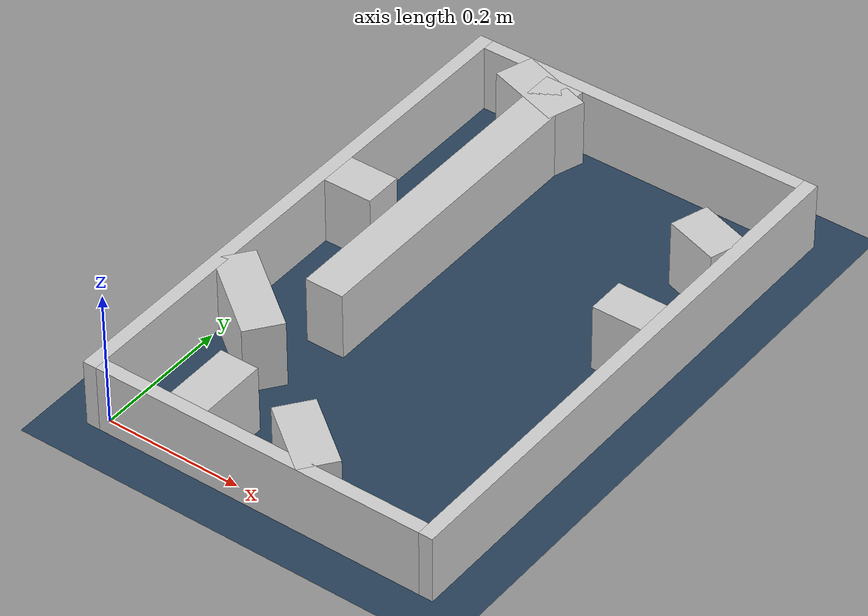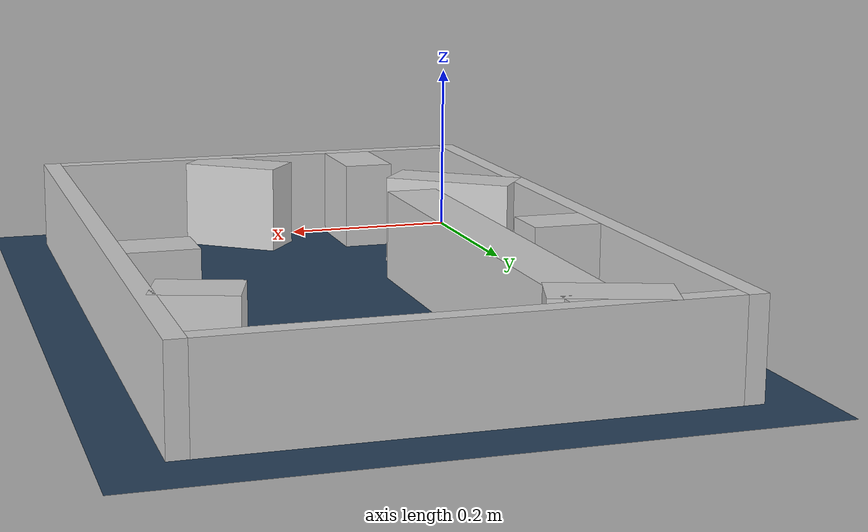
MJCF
<?xml version="1.0" ?>
<mujoco model="generated_real_template">
  <compiler angle="degree"/>
  <option timestep="0.002" integrator="implicitfast" iterations="100" cone="elliptic"/>
  <default>
    <geom density="1"/>
  </default>
  <asset>
    <texture builtin="gradient" height="3072" rgb1="0.3 0.5 0.7" rgb2="0 0 0" type="skybox" width="512"/>
    <texture builtin="checker" height="300" mark="edge" markrgb="0.8 0.8 0.8" name="groundplane" rgb1="0.2 0.3 0.4" rgb2="0.1 0.2 0.3" type="2d" width="300"/>
    <material name="groundplane" reflectance="0.2" texrepeat="5 5" texture="groundplane" texuniform="true"/>
  </asset>
  <worldbody>
    <light dir="0 0 -1" directional="true" pos="0 0 1.5"/>
    <geom name="floor" type="plane" condim="4" friction="0.5 0.005 0.001" material="groundplane" size="0 0 0.05"/>
    <body name="walls">
      <geom name="wall_boundary_left" type="box" condim="4" friction="1.0 0.005 0.0001" rgba="0.8 0.8 0.8 1" pos="-0.010000 0.387500 0.050000" euler="0 0 0.000000" size="0.010000 0.407500 0.050000"/>
      <geom name="wall_boundary_right" type="box" condim="4" friction="1.0 0.005 0.0001" rgba="0.8 0.8 0.8 1" pos="0.500000 0.387500 0.050000" euler="0 0 0.000000" size="0.010000 0.407500 0.050000"/>
      <geom name="wall_boundary_bottom" type="box" condim="4" friction="1.0 0.005 0.0001" rgba="0.8 0.8 0.8 1" pos="0.245000 -0.010000 0.050000" euler="0 0 0.000000" size="0.245000 0.010000 0.050000"/>
      <geom name="wall_boundary_top" type="box" condim="4" friction="1.0 0.005 0.0001" rgba="0.8 0.8 0.8 1" pos="0.245000 0.785000 0.050000" euler="0 0 0.000000" size="0.245000 0.010000 0.050000"/>
      <geom name="wall_inner_1_1" type="box" condim="4" friction="1.0 0.005 0.0001" rgba="0.8 0.8 0.8 1" pos="0.129738 0.048640 0.050000" euler="0 0 90.000000" size="0.048640 0.028500 0.050000"/>
      <geom name="wall_inner_1_2" type="box" condim="4" friction="1.0 0.005 0.0001" rgba="0.8 0.8 0.8 1" pos="0.129738 0.519553 0.050000" euler="0 0 90.000000" size="0.255447 0.028500 0.050000"/>
      <geom name="wall_inner_2_1" type="box" condim="4" friction="1.0 0.005 0.0001" rgba="0.8 0.8 0.8 1" pos="0.036261 0.461145 0.050000" euler="0 0 0.000000" size="0.036261 0.028500 0.050000"/>
      <geom name="wall_inner_2_2" type="box" condim="4" friction="1.0 0.005 0.0001" rgba="0.8 0.8 0.8 1" pos="0.453685 0.461145 0.050000" euler="0 0 0.000000" size="0.036315 0.028500 0.050000"/>
      <geom name="wall_inner_3_1" type="box" condim="4" friction="1.0 0.005 0.0001" rgba="0.8 0.8 0.8 1" pos="0.278586 0.037695 0.050000" euler="0 0 142.776343" size="0.057858 0.028500 0.050000"/>
      <geom name="wall_inner_3_2" type="box" condim="4" friction="1.0 0.005 0.0001" rgba="0.8 0.8 0.8 1" pos="0.058349 0.205008 0.050000" euler="0 0 142.776343" size="0.073276 0.028500 0.050000"/>
      <geom name="wall_inner_4_1" type="box" condim="4" friction="1.0 0.005 0.0001" rgba="0.8 0.8 0.8 1" pos="0.450861 0.637552 0.050000" euler="0 0 161.848863" size="0.041188 0.028500 0.050000"/>
      <geom name="wall_inner_4_2" type="box" condim="4" friction="1.0 0.005 0.0001" rgba="0.8 0.8 0.8 1" pos="0.108520 0.749784 0.050000" euler="0 0 161.848863" size="0.058207 0.028500 0.050000"/>
    </body>
  </worldbody>
</mujoco>
